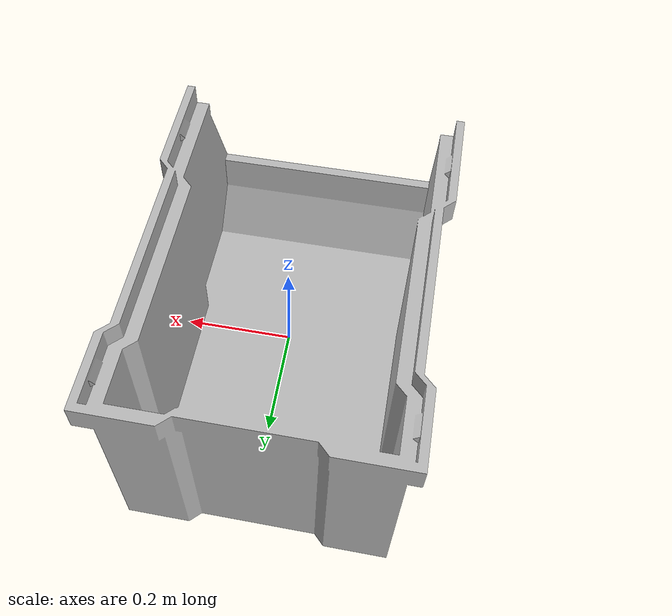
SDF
<?xml version="1.0"?>
<sdf version="1.6">
  <model name="mini_stacking_box2">
    <static>false</static>

    <link name="link">
      <gravity>1</gravity>
      <self_collide>false</self_collide>

      <!-- Inertia: mass 1 kg, box eq. 0.54 x 0.81 x 0.45 m -->
      <inertial>
        <mass>1.0</mass>
        <inertia>
          <ixx>0.07155</ixx>
          <iyy>0.041175</iyy>
          <izz>0.078975</izz>
          <ixy>0</ixy><ixz>0</ixz><iyz>0</iyz>
        </inertia>
      </inertial>

      <!-- VISUAL: DAE in meters -->
      <visual name="visual">
        <geometry>
          <mesh>
            <uri>model://mini_stacking_box2/meshes/mini_stacking_box2.dae</uri>
            <scale>1 1 1</scale>
          </mesh>
        </geometry>
        <cast_shadows>false</cast_shadows>
      </visual>

      <!-- COLLISION PRIMITIVE (t = 0.02 m) -->
      <!-- Dimensions extern Lx=0.54, Ly=0.81, Lz=0.45 -->
      <collision name="col_bottom">
        <pose>0 0 -0.27 0 0 0</pose>
        <geometry><box><size>0.50 0.77 0.01</size></box></geometry>
        <surface><contact><ode/></contact><friction><ode/></friction></surface>
      </collision>
    </link>
  </model>
</sdf>
